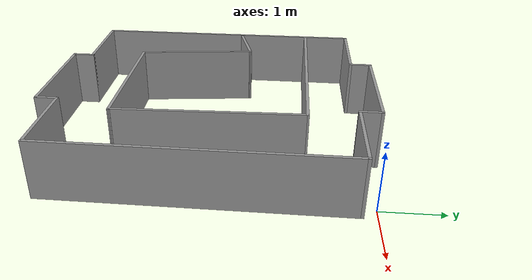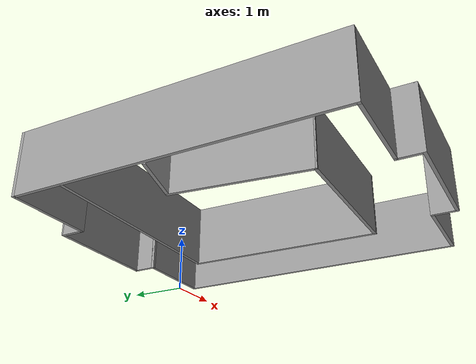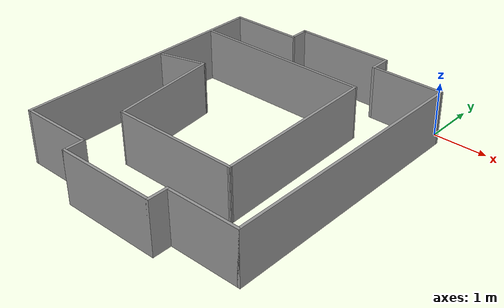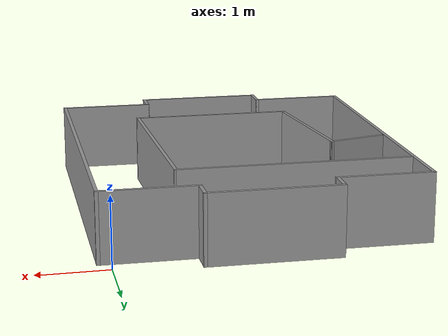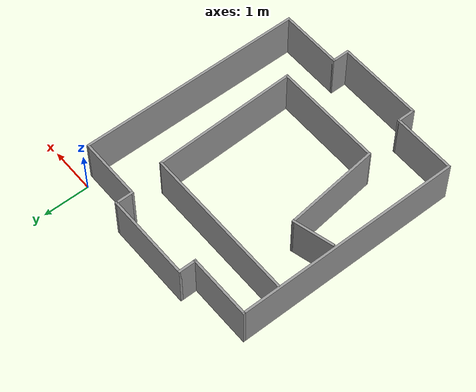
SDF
<?xml version='1.0'?>
<sdf version='1.6'>
  <model name='rgarena2-3'>
    <pose frame=''>-2.116 -2.655 0 0 -0 0</pose>
    <link name='Wall_0'>
      <collision name='Wall_0_Collision'>
        <geometry>
          <box>
            <size>4.9 0.05 1</size>
          </box>
        </geometry>
        <pose frame=''>0 0 0.5 0 -0 0</pose>
      </collision>
      <visual name='Wall_0_Visual'>
        <pose frame=''>0 0 0.5 0 -0 0</pose>
        <geometry>
          <box>
            <size>4.9 0.05 1</size>
          </box>
        </geometry>
        <material>
          <script>
            <uri>file://media/materials/scripts/gazebo.material</uri>
            <name>Gazebo/Grey</name>
          </script>
          <ambient>1 1 1 1</ambient>
        </material>
        <meta>
          <layer>0</layer>
        </meta>
      </visual>
      <pose frame=''>-2.275 -0 0 0 -0 -1.5708</pose>
    </link>
    <link name='Wall_1'>
      <collision name='Wall_1_Collision'>
        <geometry>
          <box>
            <size>1.4 0.05 1</size>
          </box>
        </geometry>
        <pose frame=''>0 0 0.5 0 -0 0</pose>
      </collision>
      <visual name='Wall_1_Visual'>
        <pose frame=''>0 0 0.5 0 -0 0</pose>
        <geometry>
          <box>
            <size>1.4 0.05 1</size>
          </box>
        </geometry>
        <material>
          <script>
            <uri>file://media/materials/scripts/gazebo.material</uri>
            <name>Gazebo/Grey</name>
          </script>
          <ambient>1 1 1 1</ambient>
        </material>
        <meta>
          <layer>0</layer>
        </meta>
      </visual>
      <pose frame=''>-1.6 -2.425 0 0 -0 0</pose>
    </link>
    <link name='Wall_13'>
      <collision name='Wall_13_Collision'>
        <geometry>
          <box>
            <size>1.9 0.05 1</size>
          </box>
        </geometry>
        <pose frame=''>0 0 0.5 0 -0 0</pose>
      </collision>
      <visual name='Wall_13_Visual'>
        <pose frame=''>0 0 0.5 0 -0 0</pose>
        <geometry>
          <box>
            <size>1.9 0.05 1</size>
          </box>
        </geometry>
        <material>
          <script>
            <uri>file://media/materials/scripts/gazebo.material</uri>
            <name>Gazebo/Grey</name>
          </script>
          <ambient>1 1 1 1</ambient>
        </material>
        <meta>
          <layer>0</layer>
        </meta>
      </visual>
      <pose frame=''>-0 2.775 0 0 -0 3.14159</pose>
    </link>
    <link name='Wall_14'>
      <collision name='Wall_14_Collision'>
        <geometry>
          <box>
            <size>0.4 0.05 1</size>
          </box>
        </geometry>
        <pose frame=''>0 0 0.5 0 -0 0</pose>
      </collision>
      <visual name='Wall_14_Visual'>
        <pose frame=''>0 0 0.5 0 -0 0</pose>
        <geometry>
          <box>
            <size>0.4 0.05 1</size>
          </box>
        </geometry>
        <material>
          <script>
            <uri>file://media/materials/scripts/gazebo.material</uri>
            <name>Gazebo/Grey</name>
          </script>
          <ambient>1 1 1 1</ambient>
        </material>
        <meta>
          <layer>0</layer>
        </meta>
      </visual>
      <pose frame=''>-0.925 2.6 0 0 -0 -1.5708</pose>
    </link>
    <link name='Wall_15'>
      <collision name='Wall_15_Collision'>
        <geometry>
          <box>
            <size>1.4 0.05 1</size>
          </box>
        </geometry>
        <pose frame=''>0 0 0.5 0 -0 0</pose>
      </collision>
      <visual name='Wall_15_Visual'>
        <pose frame=''>0 0 0.5 0 -0 0</pose>
        <geometry>
          <box>
            <size>1.4 0.05 1</size>
          </box>
        </geometry>
        <material>
          <script>
            <uri>file://media/materials/scripts/gazebo.material</uri>
            <name>Gazebo/Grey</name>
          </script>
          <ambient>1 1 1 1</ambient>
        </material>
        <meta>
          <layer>0</layer>
        </meta>
      </visual>
      <pose frame=''>-1.6 2.425 0 0 -0 3.14159</pose>
    </link>
    <link name='Wall_2'>
      <collision name='Wall_2_Collision'>
        <geometry>
          <box>
            <size>0.4 0.05 1</size>
          </box>
        </geometry>
        <pose frame=''>0 0 0.5 0 -0 0</pose>
      </collision>
      <visual name='Wall_2_Visual'>
        <pose frame=''>0 0 0.5 0 -0 0</pose>
        <geometry>
          <box>
            <size>0.4 0.05 1</size>
          </box>
        </geometry>
        <material>
          <script>
            <uri>file://media/materials/scripts/gazebo.material</uri>
            <name>Gazebo/Grey</name>
          </script>
          <ambient>1 1 1 1</ambient>
        </material>
        <meta>
          <layer>0</layer>
        </meta>
      </visual>
      <pose frame=''>-0.925 -2.6 0 0 -0 -1.5708</pose>
    </link>
    <link name='Wall_3'>
      <collision name='Wall_3_Collision'>
        <geometry>
          <box>
            <size>1.9 0.05 1</size>
          </box>
        </geometry>
        <pose frame=''>0 0 0.5 0 -0 0</pose>
      </collision>
      <visual name='Wall_3_Visual'>
        <pose frame=''>0 0 0.5 0 -0 0</pose>
        <geometry>
          <box>
            <size>1.9 0.05 1</size>
          </box>
        </geometry>
        <material>
          <script>
            <uri>file://media/materials/scripts/gazebo.material</uri>
            <name>Gazebo/Grey</name>
          </script>
          <ambient>1 1 1 1</ambient>
        </material>
        <meta>
          <layer>0</layer>
        </meta>
      </visual>
      <pose frame=''>-0 -2.775 0 0 -0 0</pose>
    </link>
    <link name='Wall_4'>
      <collision name='Wall_4_Collision'>
        <geometry>
          <box>
            <size>0.4 0.05 1</size>
          </box>
        </geometry>
        <pose frame=''>0 0 0.5 0 -0 0</pose>
      </collision>
      <visual name='Wall_4_Visual'>
        <pose frame=''>0 0 0.5 0 -0 0</pose>
        <geometry>
          <box>
            <size>0.4 0.05 1</size>
          </box>
        </geometry>
        <material>
          <script>
            <uri>file://media/materials/scripts/gazebo.material</uri>
            <name>Gazebo/Grey</name>
          </script>
          <ambient>1 1 1 1</ambient>
        </material>
        <meta>
          <layer>0</layer>
        </meta>
      </visual>
      <pose frame=''>0.925 -2.6 0 0 -0 1.5708</pose>
    </link>
    <link name='Wall_42'>
      <collision name='Wall_42_Collision'>
        <geometry>
          <box>
            <size>0.899565 0.05 1</size>
          </box>
        </geometry>
        <pose frame=''>0 0 0.5 0 -0 0</pose>
      </collision>
      <visual name='Wall_42_Visual'>
        <pose frame=''>0 0 0.5 0 -0 0</pose>
        <geometry>
          <box>
            <size>0.899565 0.05 1</size>
          </box>
        </geometry>
        <material>
          <script>
            <uri>file://media/materials/scripts/gazebo.material</uri>
            <name>Gazebo/Grey</name>
          </script>
          <ambient>1 1 1 1</ambient>
        </material>
        <meta>
          <layer>0</layer>
        </meta>
      </visual>
      <pose frame=''>-1.7955 0.442 0 0 -0 0.261815</pose>
    </link>
    <link name='Wall_43'>
      <collision name='Wall_43_Collision'>
        <geometry>
          <box>
            <size>2.09967 0.05 1</size>
          </box>
        </geometry>
        <pose frame=''>0 0 0.5 0 -0 0</pose>
      </collision>
      <visual name='Wall_43_Visual'>
        <pose frame=''>0 0 0.5 0 -0 0</pose>
        <geometry>
          <box>
            <size>2.09967 0.05 1</size>
          </box>
        </geometry>
        <material>
          <script>
            <uri>file://media/materials/scripts/gazebo.material</uri>
            <name>Gazebo/Grey</name>
          </script>
          <ambient>1 1 1 1</ambient>
        </material>
        <meta>
          <layer>0</layer>
        </meta>
      </visual>
      <pose frame=''>-1.2645 -0.4655 0 0 -0 -1.45292</pose>
    </link>
    <link name='Wall_44'>
      <collision name='Wall_44_Collision'>
        <geometry>
          <box>
            <size>2.4 0.05 1</size>
          </box>
        </geometry>
        <pose frame=''>0 0 0.5 0 -0 0</pose>
      </collision>
      <visual name='Wall_44_Visual'>
        <pose frame=''>0 0 0.5 0 -0 0</pose>
        <geometry>
          <box>
            <size>2.4 0.05 1</size>
          </box>
        </geometry>
        <material>
          <script>
            <uri>file://media/materials/scripts/gazebo.material</uri>
            <name>Gazebo/Grey</name>
          </script>
          <ambient>1 1 1 1</ambient>
        </material>
        <meta>
          <layer>0</layer>
        </meta>
      </visual>
      <pose frame=''>0.031 -1.483 0 0 -0 0</pose>
    </link>
    <link name='Wall_45'>
      <collision name='Wall_45_Collision'>
        <geometry>
          <box>
            <size>3.15137 0.05 1</size>
          </box>
        </geometry>
        <pose frame=''>0 0 0.5 0 -0 0</pose>
      </collision>
      <visual name='Wall_45_Visual'>
        <pose frame=''>0 0 0.5 0 -0 0</pose>
        <geometry>
          <box>
            <size>3.15137 0.05 1</size>
          </box>
        </geometry>
        <material>
          <script>
            <uri>file://media/materials/scripts/gazebo.material</uri>
            <name>Gazebo/Grey</name>
          </script>
          <ambient>1 1 1 1</ambient>
        </material>
        <meta>
          <layer>0</layer>
        </meta>
      </visual>
      <pose frame=''>1.16 0.067 0 0 -0 1.60047</pose>
    </link>
    <link name='Wall_46'>
      <collision name='Wall_46_Collision'>
        <geometry>
          <box>
            <size>3.40047 0.05 1</size>
          </box>
        </geometry>
        <pose frame=''>0 0 0.5 0 -0 0</pose>
      </collision>
      <visual name='Wall_46_Visual'>
        <pose frame=''>0 0 0.5 0 -0 0</pose>
        <geometry>
          <box>
            <size>3.40047 0.05 1</size>
          </box>
        </geometry>
        <material>
          <script>
            <uri>file://media/materials/scripts/gazebo.material</uri>
            <name>Gazebo/Grey</name>
          </script>
          <ambient>1 1 1 1</ambient>
        </material>
        <meta>
          <layer>0</layer>
        </meta>
      </visual>
      <pose frame=''>-0.561 1.617 0 0 -0 3.14159</pose>
    </link>
    <link name='Wall_5'>
      <collision name='Wall_5_Collision'>
        <geometry>
          <box>
            <size>1.4 0.05 1</size>
          </box>
        </geometry>
        <pose frame=''>0 0 0.5 0 -0 0</pose>
      </collision>
      <visual name='Wall_5_Visual'>
        <pose frame=''>0 0 0.5 0 -0 0</pose>
        <geometry>
          <box>
            <size>1.4 0.05 1</size>
          </box>
        </geometry>
        <material>
          <script>
            <uri>file://media/materials/scripts/gazebo.material</uri>
            <name>Gazebo/Grey</name>
          </script>
          <ambient>1 1 1 1</ambient>
        </material>
        <meta>
          <layer>0</layer>
        </meta>
      </visual>
      <pose frame=''>1.6 -2.425 0 0 -0 0</pose>
    </link>
    <link name='Wall_6'>
      <collision name='Wall_6_Collision'>
        <geometry>
          <box>
            <size>4.9 0.05 1</size>
          </box>
        </geometry>
        <pose frame=''>0 0 0.5 0 -0 0</pose>
      </collision>
      <visual name='Wall_6_Visual'>
        <pose frame=''>0 0 0.5 0 -0 0</pose>
        <geometry>
          <box>
            <size>4.9 0.05 1</size>
          </box>
        </geometry>
        <material>
          <script>
            <uri>file://media/materials/scripts/gazebo.material</uri>
            <name>Gazebo/Grey</name>
          </script>
          <ambient>1 1 1 1</ambient>
        </material>
        <meta>
          <layer>0</layer>
        </meta>
      </visual>
      <pose frame=''>2.275 -0 0 0 -0 1.5708</pose>
    </link>
    <link name='Wall_7'>
      <collision name='Wall_7_Collision'>
        <geometry>
          <box>
            <size>1.4 0.05 1</size>
          </box>
        </geometry>
        <pose frame=''>0 0 0.5 0 -0 0</pose>
      </collision>
      <visual name='Wall_7_Visual'>
        <pose frame=''>0 0 0.5 0 -0 0</pose>
        <geometry>
          <box>
            <size>1.4 0.05 1</size>
          </box>
        </geometry>
        <material>
          <script>
            <uri>file://media/materials/scripts/gazebo.material</uri>
            <name>Gazebo/Grey</name>
          </script>
          <ambient>1 1 1 1</ambient>
        </material>
        <meta>
          <layer>0</layer>
        </meta>
      </visual>
      <pose frame=''>1.6 2.425 0 0 -0 3.14159</pose>
    </link>
    <link name='Wall_9'>
      <collision name='Wall_9_Collision'>
        <geometry>
          <box>
            <size>0.4 0.05 1</size>
          </box>
        </geometry>
        <pose frame=''>0 0 0.5 0 -0 0</pose>
      </collision>
      <visual name='Wall_9_Visual'>
        <pose frame=''>0 0 0.5 0 -0 0</pose>
        <geometry>
          <box>
            <size>0.4 0.05 1</size>
          </box>
        </geometry>
        <material>
          <script>
            <uri>file://media/materials/scripts/gazebo.material</uri>
            <name>Gazebo/Grey</name>
          </script>
          <ambient>1 1 1 1</ambient>
        </material>
        <meta>
          <layer>0</layer>
        </meta>
      </visual>
      <pose frame=''>0.925 2.6 0 0 -0 1.5708</pose>
    </link>
    <static>1</static>
  </model>
</sdf>
